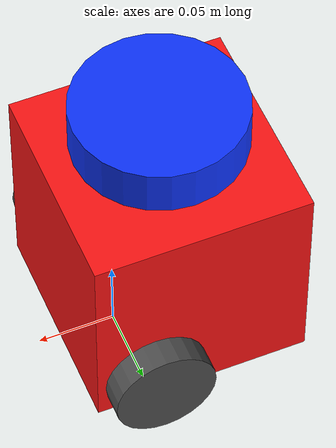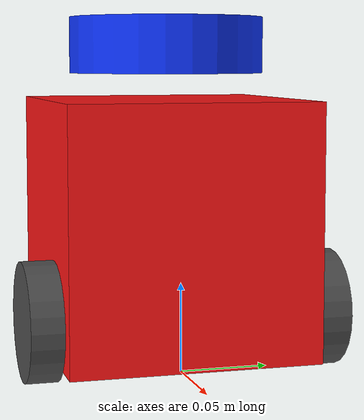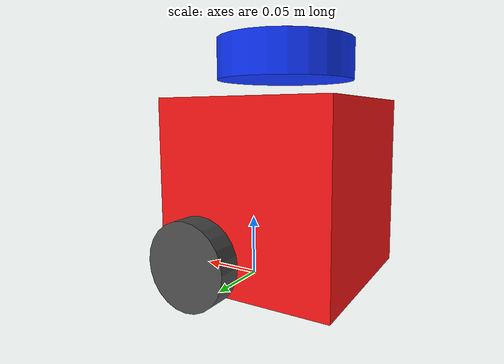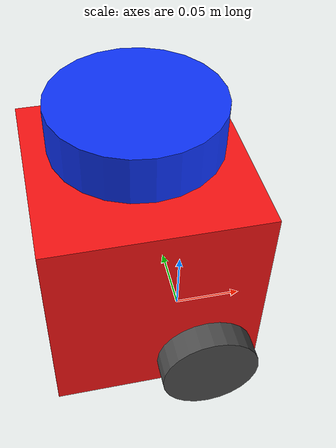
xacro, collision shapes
<?xml version="1.0"?>
<robot name="turtlebot3" xmlns:xacro="http://ros.org/wiki/xacro">

  <!-- Declare argument -->
  <xacro:arg name="model" default="burger"/>

  <!-- Promote arg to property (THIS WAS MISSING) -->
  <xacro:property name="model" value="$(arg model)"/>

  <!-- Materials defined ONCE -->
  <xacro:include filename="$(find sim)/robot_description/urdf/common_properties.urdf.xacro"/>

  <!-- Select model -->
  <xacro:if value="${model == 'burger'}">
    <xacro:include filename="$(find sim)/robot_description/urdf/turtlebot3_burger.urdf.xacro"/>
  </xacro:if>

  <xacro:if value="${model == 'waffle_pi'}">
    <xacro:include filename="$(find sim)/robot_description/urdf/turtlebot3_waffle_pi.urdf.xacro"/>
  </xacro:if>

</robot>

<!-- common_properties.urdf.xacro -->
<robot name="common_properties" xmlns:xacro="http://ros.org/wiki/xacro">

  <!-- Standard TurtleBot3 material palette -->
  <material name="black">
    <color rgba="0.0 0.0 0.0 1.0"/>
  </material>

  <material name="dark">
    <color rgba="0.3 0.3 0.3 1.0"/>
  </material>

  <material name="light_black">
    <color rgba="0.4 0.4 0.4 1.0"/>
  </material>

  <material name="blue">
    <color rgba="0.0 0.0 0.8 1.0"/>
  </material>

  <material name="green">
    <color rgba="0.0 0.8 0.0 1.0"/>
  </material>

  <material name="grey">
    <color rgba="0.5 0.5 0.5 1.0"/>
  </material>

  <material name="orange">
    <color rgba="1.0 0.4235 0.0392 1.0"/>
  </material>

  <material name="brown">
    <color rgba="0.8706 0.8118 0.7647 1.0"/>
  </material>

  <material name="red">
    <color rgba="0.8 0.0 0.0 1.0"/>
  </material>

  <material name="white">
    <color rgba="1.0 1.0 1.0 1.0"/>
  </material>

</robot>

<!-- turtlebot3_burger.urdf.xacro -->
<robot name="turtlebot3_burger" xmlns:xacro="http://ros.org/wiki/xacro">

  <!-- Arguments -->
  <xacro:arg name="namespace" default=""/>
  <xacro:arg name="use_lidar" default="true"/>
  <xacro:arg name="show_pose_markers" default="false"/>
  <xacro:property name="ns" value="$(arg namespace)"/>

  <xacro:property name="pm_front_x" value="0.040"/>
  <xacro:property name="pm_rear_x"  value="-0.100"/>
  <xacro:property name="pm_marker_y" value="0.0"/>
  <xacro:property name="pm_marker_z" value="0.200"/>

  <!-- Materials (REQUIRED) -->
  <material name="black"><color rgba="0 0 0 1"/></material>
  <material name="dark"><color rgba="0.3 0.3 0.3 1"/></material>
  <material name="light_black"><color rgba="0.4 0.4 0.4 1"/></material>
  <material name="front_red"><color rgba="0.98 0.08 0.08 1.0"/></material>
  <material name="rear_blue"><color rgba="0.05 0.20 0.98 1.0"/></material>
  <material name="marker_cyan"><color rgba="0.0 0.95 0.95 1.0"/></material>
  <material name="marker_magenta"><color rgba="0.95 0.0 0.95 1.0"/></material>

  <!-- Base -->
  <link name="${ns}base_footprint"/>

  <joint name="${ns}base_joint" type="fixed">
    <parent link="${ns}base_footprint"/>
    <child link="${ns}base_link"/>
    <origin xyz="0 0 0.010"/>
  </joint>

  <link name="${ns}base_link">
    <visual>
      <origin xyz="-0.032 0 0"/>
      <geometry>
        <mesh filename="package://sim/robot_description/meshes/turtlebot3_description/meshes/bases/burger_base.stl"
              scale="0.001 0.001 0.001"/>
      </geometry>
      <material name="front_red"/>
    </visual>

    <collision>
      <origin xyz="-0.032 0 0.070"/>
      <geometry>
        <box size="0.140 0.140 0.143"/>
      </geometry>
    </collision>

    <inertial>
      <mass value="0.825735"/>
      <origin xyz="0 0 0"/>
      <inertia
        ixx="2.2124416e-03" ixy="-1.2294101e-05" ixz="3.4938785e-05"
        iyy="2.1193702e-03" iyz="-5.0120904e-06"
        izz="2.0064271e-03"/>
    </inertial>
  </link>

  <!-- Wheels -->
  <joint name="${ns}wheel_left_joint" type="continuous">
    <parent link="${ns}base_link"/>
    <child link="${ns}wheel_left_link"/>
    <origin xyz="0 0.08 0.023" rpy="-1.57 0 0"/>
    <axis xyz="0 0 1"/>
  </joint>

  <link name="${ns}wheel_left_link">
    <visual>
      <origin rpy="1.57 0 0"/>
      <geometry>
        <mesh filename="package://sim/robot_description/meshes/turtlebot3_description/meshes/wheels/left_tire.stl"
              scale="0.001 0.001 0.001"/>
      </geometry>
      <material name="dark"/>
    </visual>

    <collision>
      <geometry>
        <cylinder length="0.018" radius="0.033"/>
      </geometry>
    </collision>

    <inertial>
      <mass value="0.02849894"/>
      <origin xyz="0 0 0"/>
      <inertia
        ixx="1.1175580e-05" ixy="0.0" ixz="0.0"
        iyy="1.1192413e-05" iyz="0.0"
        izz="2.0712558e-05"/>
    </inertial>
  </link>

  <joint name="${ns}wheel_right_joint" type="continuous">
    <parent link="${ns}base_link"/>
    <child link="${ns}wheel_right_link"/>
    <origin xyz="0 -0.08 0.023" rpy="-1.57 0 0"/>
    <axis xyz="0 0 1"/>
  </joint>

  <link name="${ns}wheel_right_link">
    <visual>
      <origin rpy="1.57 0 0"/>
      <geometry>
        <mesh filename="package://sim/robot_description/meshes/turtlebot3_description/meshes/wheels/right_tire.stl"
              scale="0.001 0.001 0.001"/>
      </geometry>
      <material name="dark"/>
    </visual>

    <collision>
      <geometry>
        <cylinder length="0.018" radius="0.033"/>
      </geometry>
    </collision>

    <inertial>
      <mass value="0.02849894"/>
      <origin xyz="0 0 0"/>
      <inertia
        ixx="1.1175580e-05" ixy="0.0" ixz="0.0"
        iyy="1.1192413e-05" iyz="0.0"
        izz="2.0712558e-05"/>
    </inertial>
  </link>

  <!-- IMU -->
  <joint name="${ns}imu_joint" type="fixed">
    <parent link="${ns}base_link"/>
    <child link="${ns}imu_link"/>
    <origin xyz="-0.032 0 0.068"/>
  </joint>
  <link name="${ns}imu_link"/>

  <!-- LiDAR -->
  <joint name="${ns}scan_joint" type="fixed">
    <parent link="${ns}base_link"/>
    <child link="${ns}base_scan"/>
    <origin xyz="-0.032 0 0.172"/>
  </joint>

  <link name="${ns}base_scan">
    <visual>
      <origin xyz="-0.045 0 0"/>
      <geometry>
        <mesh filename="package://sim/robot_description/meshes/turtlebot3_description/meshes/sensors/lds.stl"
              scale="0.001 0.001 0.001"/>
      </geometry>
      <material name="rear_blue"/>
    </visual>

    <collision>
      <geometry>
        <cylinder length="0.0315" radius="0.055"/>
      </geometry>
    </collision>

    <inertial>
      <mass value="0.114"/>
      <origin xyz="0 0 0"/>
      <inertia
        ixx="0.001" ixy="0.0" ixz="0.0"
        iyy="0.001" iyz="0.0"
        izz="0.001"/>
    </inertial>
  </link>

  <xacro:if value="$(arg show_pose_markers)">
    <joint name="${ns}front_marker_joint" type="fixed">
      <parent link="${ns}base_link"/>
      <child link="${ns}front_marker"/>
      <origin xyz="${pm_front_x} ${pm_marker_y} ${pm_marker_z}"/>
    </joint>
    <link name="${ns}front_marker">
      <visual>
        <geometry><cylinder length="0.008" radius="0.025"/></geometry>
        <material name="marker_cyan"/>
      </visual>
      <inertial>
        <mass value="0.001"/>
        <inertia ixx="1e-7" ixy="0" ixz="0" iyy="1e-7" iyz="0" izz="1e-7"/>
      </inertial>
    </link>

    <joint name="${ns}rear_marker_joint" type="fixed">
      <parent link="${ns}base_link"/>
      <child link="${ns}rear_marker"/>
      <origin xyz="${pm_rear_x} ${pm_marker_y} ${pm_marker_z}"/>
    </joint>
    <link name="${ns}rear_marker">
      <visual>
        <geometry><cylinder length="0.008" radius="0.025"/></geometry>
        <material name="marker_magenta"/>
      </visual>
      <inertial>
        <mass value="0.001"/>
        <inertia ixx="1e-7" ixy="0" ixz="0" iyy="1e-7" iyz="0" izz="1e-7"/>
      </inertial>
    </link>
  </xacro:if>

    <!-- Gazebo Sensor Plugins -->
    <xacro:if value="$(arg use_lidar)">
      <gazebo reference="${ns}base_scan">
        <sensor name="lidar" type="gpu_lidar">
          <pose>0 0 0 0 0 0</pose>
          <topic>scan</topic>
          <update_rate>5</update_rate>
          <ray>
            <scan>
              <horizontal>
                <samples>360</samples>
                <resolution>1</resolution>
                <min_angle>0.0</min_angle>
                <max_angle>6.28318</max_angle>
              </horizontal>
            </scan>
            <range>
              <min>0.12</min>
              <max>3.5</max>
            </range>
          </ray>
          <always_on>true</always_on>
          <visualize>true</visualize>
        </sensor>
      </gazebo>
    </xacro:if>

    <!-- ================= Gazebo Harmonic DiffDrive ================= -->
    <gazebo>
    <plugin
        filename="gz-sim-label-system"
        name="ignition::gazebo::systems::Label">
        <label>23</label>
    </plugin>

    <plugin
        filename="gz-sim-diff-drive-system"
        name="gz::sim::systems::DiffDrive">

        <!-- Wheel joints -->
        <left_joint>${ns}wheel_left_joint</left_joint>
        <right_joint>${ns}wheel_right_joint</right_joint>

        <!-- Physical parameters -->
        <wheel_separation>0.160</wheel_separation>
        <wheel_radius>0.033</wheel_radius>

        <!-- ROS interface -->
        <topic>/model/turtlebot3/cmd_vel</topic>
        <odom_topic>/model/turtlebot3/odometry</odom_topic>

        <!-- Frames -->
        <frame_id>odom</frame_id>
        <child_frame_id>base_link</child_frame_id>

        <odom_publish_frequency>50</odom_publish_frequency>
        <publish_tf>true</publish_tf>
    </plugin>
    </gazebo>

</robot>
